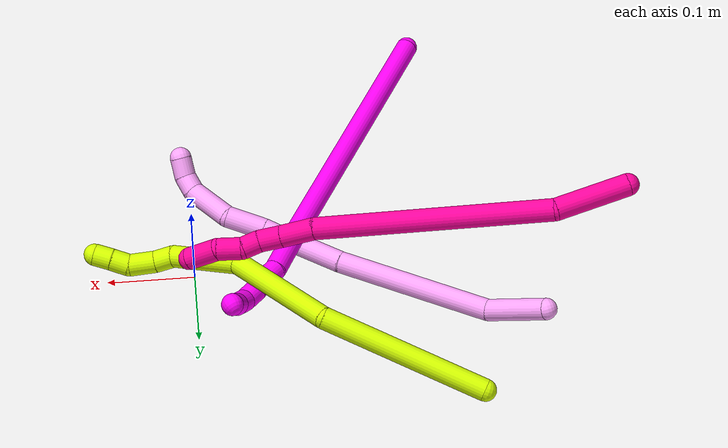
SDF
<sdf version="1.7">
 <world name="default">
  <model name="4">
   <static>0</static>
   <link name="4">
    <collision name="collision-cylinder-e_1_1_4">
     <pose>0.025404 0.000134 0.027908 -0.004799 0.738458 -0.001857</pose>
     <geometry><cylinder><radius>0.0125</radius><length>0.075479</length></cylinder></geometry>
     <surface>
      <friction><ode><mu>1.16</mu><mu2>1.16</mu2><slip1>0</slip1><slip2>0</slip2></ode></friction>
      <contact><ode><kp>1e+06</kp><kd>1</kd><max_vel>0</max_vel><min_depth>0.001</min_depth></ode></contact>
     </surface>
    </collision>
    <visual name="visual-cylinder-e_1_1_4">
     <pose>0.025404 0.000134 0.027908 -0.004799 0.738458 -0.001857</pose>
     <geometry><cylinder><radius>0.0125</radius><length>0.075479</length></cylinder></geometry>
     <material><ambient>1 0.65098 0.996078 1</ambient></material>
    </visual>
    <collision name="collision-cylinder-e_2_4_5">
     <pose>0.094391 -0.038704 0.124759 0.514506 0.50309 0.135013</pose>
     <geometry><cylinder><radius>0.0125</radius><length>0.18079</length></cylinder></geometry>
     <surface>
      <friction><ode><mu>1.16</mu><mu2>1.16</mu2><slip1>0</slip1><slip2>0</slip2></ode></friction>
      <contact><ode><kp>1e+06</kp><kd>1</kd><max_vel>0</max_vel><min_depth>0.001</min_depth></ode></contact>
     </surface>
    </collision>
    <visual name="visual-cylinder-e_2_4_5">
     <pose>0.094391 -0.038704 0.124759 0.514506 0.50309 0.135013</pose>
     <geometry><cylinder><radius>0.0125</radius><length>0.18079</length></cylinder></geometry>
     <material><ambient>1 0.65098 0.996078 1</ambient></material>
    </visual>
    <collision name="collision-cylinder-e_3_5_6">
     <pose>0.158758 -0.094988 0.219657 0.588186 0.58765 0.18278</pose>
     <geometry><cylinder><radius>0.0125</radius><length>0.074977</length></cylinder></geometry>
     <surface>
      <friction><ode><mu>1.16</mu><mu2>1.16</mu2><slip1>0</slip1><slip2>0</slip2></ode></friction>
      <contact><ode><kp>1e+06</kp><kd>1</kd><max_vel>0</max_vel><min_depth>0.001</min_depth></ode></contact>
     </surface>
    </collision>
    <visual name="visual-cylinder-e_3_5_6">
     <pose>0.158758 -0.094988 0.219657 0.588186 0.58765 0.18278</pose>
     <geometry><cylinder><radius>0.0125</radius><length>0.074977</length></cylinder></geometry>
     <material><ambient>1 0.65098 0.996078 1</ambient></material>
    </visual>
    <collision name="collision-cylinder-e_4_6_7">
     <pose>0.185879 -0.118483 0.253857 0.643652 0.551387 0.188089</pose>
     <geometry><cylinder><radius>0.0125</radius><length>0.024195</length></cylinder></geometry>
     <surface>
      <friction><ode><mu>1.16</mu><mu2>1.16</mu2><slip1>0</slip1><slip2>0</slip2></ode></friction>
      <contact><ode><kp>1e+06</kp><kd>1</kd><max_vel>0</max_vel><min_depth>0.001</min_depth></ode></contact>
     </surface>
    </collision>
    <visual name="visual-cylinder-e_4_6_7">
     <pose>0.185879 -0.118483 0.253857 0.643652 0.551387 0.188089</pose>
     <geometry><cylinder><radius>0.0125</radius><length>0.024195</length></cylinder></geometry>
     <material><ambient>1 0.65098 0.996078 1</ambient></material>
    </visual>
    <collision name="collision-cylinder-e_5_7_8">
     <pose>0.200476 -0.136089 0.28023 0.56217 0.367888 0.107331</pose>
     <geometry><cylinder><radius>0.0125</radius><length>0.045931</length></cylinder></geometry>
     <surface>
      <friction><ode><mu>1.16</mu><mu2>1.16</mu2><slip1>0</slip1><slip2>0</slip2></ode></friction>
      <contact><ode><kp>1e+06</kp><kd>1</kd><max_vel>0</max_vel><min_depth>0.001</min_depth></ode></contact>
     </surface>
    </collision>
    <visual name="visual-cylinder-e_5_7_8">
     <pose>0.200476 -0.136089 0.28023 0.56217 0.367888 0.107331</pose>
     <geometry><cylinder><radius>0.0125</radius><length>0.045931</length></cylinder></geometry>
     <material><ambient>1 0.65098 0.996078 1</ambient></material>
    </visual>
    <collision name="collision-cylinder-e_6_8_9">
     <pose>0.228102 -0.161801 0.311604 0.823411 0.782381 0.356379</pose>
     <geometry><cylinder><radius>0.0125</radius><length>0.054942</length></cylinder></geometry>
     <surface>
      <friction><ode><mu>1.16</mu><mu2>1.16</mu2><slip1>0</slip1><slip2>0</slip2></ode></friction>
      <contact><ode><kp>1e+06</kp><kd>1</kd><max_vel>0</max_vel><min_depth>0.001</min_depth></ode></contact>
     </surface>
    </collision>
    <visual name="visual-cylinder-e_6_8_9">
     <pose>0.228102 -0.161801 0.311604 0.823411 0.782381 0.356379</pose>
     <geometry><cylinder><radius>0.0125</radius><length>0.054942</length></cylinder></geometry>
     <material><ambient>1 0.65098 0.996078 1</ambient></material>
    </visual>
    <collision name="collision-cylinder-e_7_9_10">
     <pose>0.253143 -0.184452 0.326739 1.34831 0.584844 0.472136</pose>
     <geometry><cylinder><radius>0.0125</radius><length>0.020559</length></cylinder></geometry>
     <surface>
      <friction><ode><mu>1.16</mu><mu2>1.16</mu2><slip1>0</slip1><slip2>0</slip2></ode></friction>
      <contact><ode><kp>1e+06</kp><kd>1</kd><max_vel>0</max_vel><min_depth>0.001</min_depth></ode></contact>
     </surface>
    </collision>
    <visual name="visual-cylinder-e_7_9_10">
     <pose>0.253143 -0.184452 0.326739 1.34831 0.584844 0.472136</pose>
     <geometry><cylinder><radius>0.0125</radius><length>0.020559</length></cylinder></geometry>
     <material><ambient>1 0.65098 0.996078 1</ambient></material>
    </visual>
    <collision name="collision-cylinder-e_8_10_2">
     <pose>0.261586 -0.204016 0.327919 1.63417 0.241762 0.257422</pose>
     <geometry><cylinder><radius>0.0125</radius><length>0.023127</length></cylinder></geometry>
     <surface>
      <friction><ode><mu>1.16</mu><mu2>1.16</mu2><slip1>0</slip1><slip2>0</slip2></ode></friction>
      <contact><ode><kp>1e+06</kp><kd>1</kd><max_vel>0</max_vel><min_depth>0.001</min_depth></ode></contact>
     </surface>
    </collision>
    <visual name="visual-cylinder-e_8_10_2">
     <pose>0.261586 -0.204016 0.327919 1.63417 0.241762 0.257422</pose>
     <geometry><cylinder><radius>0.0125</radius><length>0.023127</length></cylinder></geometry>
     <material><ambient>1 0.65098 0.996078 1</ambient></material>
    </visual>
    <collision name="collision-sphere-2">
     <pose>0.264355 -0.215221 0.327208 0 -0 0</pose>
     <geometry><sphere><radius>0.0125</radius></sphere></geometry>
     <surface>
      <friction><ode><mu>1.16</mu><mu2>1.16</mu2><slip1>0</slip1><slip2>0</slip2></ode></friction>
      <contact><ode><kp>1e+06</kp><kd>1</kd><max_vel>0</max_vel><min_depth>0.001</min_depth></ode></contact>
     </surface>
    </collision>
    <visual name="visual-sphere-2">
     <pose>0.264355 -0.215221 0.327208 0 -0 0</pose>
     <geometry><sphere><radius>0.0125</radius></sphere></geometry>
     <material><ambient>1 0.65098 0.996078 1</ambient></material>
    </visual>
    <collision name="collision-sphere-10">
     <pose>0.258818 -0.192811 0.32863 0 -0 0</pose>
     <geometry><sphere><radius>0.0125</radius></sphere></geometry>
     <surface>
      <friction><ode><mu>1.16</mu><mu2>1.16</mu2><slip1>0</slip1><slip2>0</slip2></ode></friction>
      <contact><ode><kp>1e+06</kp><kd>1</kd><max_vel>0</max_vel><min_depth>0.001</min_depth></ode></contact>
     </surface>
    </collision>
    <visual name="visual-sphere-10">
     <pose>0.258818 -0.192811 0.32863 0 -0 0</pose>
     <geometry><sphere><radius>0.0125</radius></sphere></geometry>
     <material><ambient>1 0.65098 0.996078 1</ambient></material>
    </visual>
    <collision name="collision-sphere-9">
     <pose>0.247468 -0.176092 0.324848 0 -0 0</pose>
     <geometry><sphere><radius>0.0125</radius></sphere></geometry>
     <surface>
      <friction><ode><mu>1.16</mu><mu2>1.16</mu2><slip1>0</slip1><slip2>0</slip2></ode></friction>
      <contact><ode><kp>1e+06</kp><kd>1</kd><max_vel>0</max_vel><min_depth>0.001</min_depth></ode></contact>
     </surface>
    </collision>
    <visual name="visual-sphere-9">
     <pose>0.247468 -0.176092 0.324848 0 -0 0</pose>
     <geometry><sphere><radius>0.0125</radius></sphere></geometry>
     <material><ambient>1 0.65098 0.996078 1</ambient></material>
    </visual>
    <collision name="collision-sphere-4">
     <pose>0.050809 0.000268 0.055817 0 -0 0</pose>
     <geometry><sphere><radius>0.0125</radius></sphere></geometry>
     <surface>
      <friction><ode><mu>1.16</mu><mu2>1.16</mu2><slip1>0</slip1><slip2>0</slip2></ode></friction>
      <contact><ode><kp>1e+06</kp><kd>1</kd><max_vel>0</max_vel><min_depth>0.001</min_depth></ode></contact>
     </surface>
    </collision>
    <visual name="visual-sphere-4">
     <pose>0.050809 0.000268 0.055817 0 -0 0</pose>
     <geometry><sphere><radius>0.0125</radius></sphere></geometry>
     <material><ambient>1 0.65098 0.996078 1</ambient></material>
    </visual>
    <collision name="collision-sphere-1">
     <geometry><sphere><radius>0.0125</radius></sphere></geometry>
     <surface>
      <friction><ode><mu>1.16</mu><mu2>1.16</mu2><slip1>0</slip1><slip2>0</slip2></ode></friction>
      <contact><ode><kp>1e+06</kp><kd>1</kd><max_vel>0</max_vel><min_depth>0.001</min_depth></ode></contact>
     </surface>
    </collision>
    <visual name="visual-sphere-1">
     <geometry><sphere><radius>0.0125</radius></sphere></geometry>
     <material><ambient>1 0.65098 0.996078 1</ambient></material>
    </visual>
    <collision name="collision-sphere-8">
     <pose>0.208736 -0.147511 0.298361 0 -0 0</pose>
     <geometry><sphere><radius>0.0125</radius></sphere></geometry>
     <surface>
      <friction><ode><mu>1.16</mu><mu2>1.16</mu2><slip1>0</slip1><slip2>0</slip2></ode></friction>
      <contact><ode><kp>1e+06</kp><kd>1</kd><max_vel>0</max_vel><min_depth>0.001</min_depth></ode></contact>
     </surface>
    </collision>
    <visual name="visual-sphere-8">
     <pose>0.208736 -0.147511 0.298361 0 -0 0</pose>
     <geometry><sphere><radius>0.0125</radius></sphere></geometry>
     <material><ambient>1 0.65098 0.996078 1</ambient></material>
    </visual>
    <collision name="collision-sphere-5">
     <pose>0.137974 -0.077676 0.193701 0 -0 0</pose>
     <geometry><sphere><radius>0.0125</radius></sphere></geometry>
     <surface>
      <friction><ode><mu>1.16</mu><mu2>1.16</mu2><slip1>0</slip1><slip2>0</slip2></ode></friction>
      <contact><ode><kp>1e+06</kp><kd>1</kd><max_vel>0</max_vel><min_depth>0.001</min_depth></ode></contact>
     </surface>
    </collision>
    <visual name="visual-sphere-5">
     <pose>0.137974 -0.077676 0.193701 0 -0 0</pose>
     <geometry><sphere><radius>0.0125</radius></sphere></geometry>
     <material><ambient>1 0.65098 0.996078 1</ambient></material>
    </visual>
    <collision name="collision-sphere-6">
     <pose>0.179542 -0.112299 0.245614 0 -0 0</pose>
     <geometry><sphere><radius>0.0125</radius></sphere></geometry>
     <surface>
      <friction><ode><mu>1.16</mu><mu2>1.16</mu2><slip1>0</slip1><slip2>0</slip2></ode></friction>
      <contact><ode><kp>1e+06</kp><kd>1</kd><max_vel>0</max_vel><min_depth>0.001</min_depth></ode></contact>
     </surface>
    </collision>
    <visual name="visual-sphere-6">
     <pose>0.179542 -0.112299 0.245614 0 -0 0</pose>
     <geometry><sphere><radius>0.0125</radius></sphere></geometry>
     <material><ambient>1 0.65098 0.996078 1</ambient></material>
    </visual>
    <collision name="collision-sphere-7">
     <pose>0.192217 -0.124667 0.262099 0 -0 0</pose>
     <geometry><sphere><radius>0.0125</radius></sphere></geometry>
     <surface>
      <friction><ode><mu>1.16</mu><mu2>1.16</mu2><slip1>0</slip1><slip2>0</slip2></ode></friction>
      <contact><ode><kp>1e+06</kp><kd>1</kd><max_vel>0</max_vel><min_depth>0.001</min_depth></ode></contact>
     </surface>
    </collision>
    <visual name="visual-sphere-7">
     <pose>0.192217 -0.124667 0.262099 0 -0 0</pose>
     <geometry><sphere><radius>0.0125</radius></sphere></geometry>
     <material><ambient>1 0.65098 0.996078 1</ambient></material>
    </visual>
    <inertial>
     <pose>0.136755 -0.081253 0.183131 0 -0 0</pose>
     <mass>0.5</mass>
     <inertia>
      <ixx>0.00061</ixx>
      <ixy>0</ixy>
      <ixz>0</ixz>
      <iyy>0.000597</iyy>
      <iyz>0</iyz>
      <izz>-2.9e-05</izz>
     </inertia>
    </inertial>
   </link>
   <pose>-0.388506 0.131588 0.04259 -1.72737 0.451621 -1.43588</pose>
  </model>
  <model name="10">
   <static>0</static>
   <link name="10">
    <collision name="collision-cylinder-e_1_1_4">
     <pose>0.123444 0.057773 -0.099674 -2.6163 0.819901 -2.03351</pose>
     <geometry><cylinder><radius>0.0125</radius><length>0.337705</length></cylinder></geometry>
     <surface>
      <friction><ode><mu>1.16</mu><mu2>1.16</mu2><slip1>0</slip1><slip2>0</slip2></ode></friction>
      <contact><ode><kp>1e+06</kp><kd>1</kd><max_vel>0</max_vel><min_depth>0.001</min_depth></ode></contact>
     </surface>
    </collision>
    <visual name="visual-cylinder-e_1_1_4">
     <pose>0.123444 0.057773 -0.099674 -2.6163 0.819901 -2.03351</pose>
     <geometry><cylinder><radius>0.0125</radius><length>0.337705</length></cylinder></geometry>
     <material><ambient>1 0 0.964706 1</ambient></material>
    </visual>
    <collision name="collision-cylinder-e_2_4_5">
     <pose>0.269043 0.12529 -0.217954 -2.65916 0.812069 -2.10213</pose>
     <geometry><cylinder><radius>0.0125</radius><length>0.061055</length></cylinder></geometry>
     <surface>
      <friction><ode><mu>1.16</mu><mu2>1.16</mu2><slip1>0</slip1><slip2>0</slip2></ode></friction>
      <contact><ode><kp>1e+06</kp><kd>1</kd><max_vel>0</max_vel><min_depth>0.001</min_depth></ode></contact>
     </surface>
    </collision>
    <visual name="visual-cylinder-e_2_4_5">
     <pose>0.269043 0.12529 -0.217954 -2.65916 0.812069 -2.10213</pose>
     <geometry><cylinder><radius>0.0125</radius><length>0.061055</length></cylinder></geometry>
     <material><ambient>1 0 0.964706 1</ambient></material>
    </visual>
    <collision name="collision-cylinder-e_3_5_6">
     <pose>0.299866 0.138667 -0.240573 -2.40582 1.01262 -1.92676</pose>
     <geometry><cylinder><radius>0.0125</radius><length>0.02044</length></cylinder></geometry>
     <surface>
      <friction><ode><mu>1.16</mu><mu2>1.16</mu2><slip1>0</slip1><slip2>0</slip2></ode></friction>
      <contact><ode><kp>1e+06</kp><kd>1</kd><max_vel>0</max_vel><min_depth>0.001</min_depth></ode></contact>
     </surface>
    </collision>
    <visual name="visual-cylinder-e_3_5_6">
     <pose>0.299866 0.138667 -0.240573 -2.40582 1.01262 -1.92676</pose>
     <geometry><cylinder><radius>0.0125</radius><length>0.02044</length></cylinder></geometry>
     <material><ambient>1 0 0.964706 1</ambient></material>
    </visual>
    <collision name="collision-cylinder-e_4_6_7">
     <pose>0.316358 0.146132 -0.249611 -2.49018 0.891227 -1.91069</pose>
     <geometry><cylinder><radius>0.0125</radius><length>0.020114</length></cylinder></geometry>
     <surface>
      <friction><ode><mu>1.16</mu><mu2>1.16</mu2><slip1>0</slip1><slip2>0</slip2></ode></friction>
      <contact><ode><kp>1e+06</kp><kd>1</kd><max_vel>0</max_vel><min_depth>0.001</min_depth></ode></contact>
     </surface>
    </collision>
    <visual name="visual-cylinder-e_4_6_7">
     <pose>0.316358 0.146132 -0.249611 -2.49018 0.891227 -1.91069</pose>
     <geometry><cylinder><radius>0.0125</radius><length>0.020114</length></cylinder></geometry>
     <material><ambient>1 0 0.964706 1</ambient></material>
    </visual>
    <collision name="collision-cylinder-e_5_7_8">
     <pose>0.332604 0.154066 -0.258583 -2.33667 0.976572 -1.79039</pose>
     <geometry><cylinder><radius>0.0125</radius><length>0.020331</length></cylinder></geometry>
     <surface>
      <friction><ode><mu>1.16</mu><mu2>1.16</mu2><slip1>0</slip1><slip2>0</slip2></ode></friction>
      <contact><ode><kp>1e+06</kp><kd>1</kd><max_vel>0</max_vel><min_depth>0.001</min_depth></ode></contact>
     </surface>
    </collision>
    <visual name="visual-cylinder-e_5_7_8">
     <pose>0.332604 0.154066 -0.258583 -2.33667 0.976572 -1.79039</pose>
     <geometry><cylinder><radius>0.0125</radius><length>0.020331</length></cylinder></geometry>
     <material><ambient>1 0 0.964706 1</ambient></material>
    </visual>
    <collision name="collision-cylinder-e_6_8_9">
     <pose>0.34657 0.165881 -0.265885 -1.98133 0.582753 -0.858366</pose>
     <geometry><cylinder><radius>0.0125</radius><length>0.020147</length></cylinder></geometry>
     <surface>
      <friction><ode><mu>1.16</mu><mu2>1.16</mu2><slip1>0</slip1><slip2>0</slip2></ode></friction>
      <contact><ode><kp>1e+06</kp><kd>1</kd><max_vel>0</max_vel><min_depth>0.001</min_depth></ode></contact>
     </surface>
    </collision>
    <visual name="visual-cylinder-e_6_8_9">
     <pose>0.34657 0.165881 -0.265885 -1.98133 0.582753 -0.858366</pose>
     <geometry><cylinder><radius>0.0125</radius><length>0.020147</length></cylinder></geometry>
     <material><ambient>1 0 0.964706 1</ambient></material>
    </visual>
    <collision name="collision-cylinder-e_7_9_2">
     <pose>0.355424 0.18274 -0.271974 -1.86106 0.333725 -0.444707</pose>
     <geometry><cylinder><radius>0.0125</radius><length>0.020207</length></cylinder></geometry>
     <surface>
      <friction><ode><mu>1.16</mu><mu2>1.16</mu2><slip1>0</slip1><slip2>0</slip2></ode></friction>
      <contact><ode><kp>1e+06</kp><kd>1</kd><max_vel>0</max_vel><min_depth>0.001</min_depth></ode></contact>
     </surface>
    </collision>
    <visual name="visual-cylinder-e_7_9_2">
     <pose>0.355424 0.18274 -0.271974 -1.86106 0.333725 -0.444707</pose>
     <geometry><cylinder><radius>0.0125</radius><length>0.020207</length></cylinder></geometry>
     <material><ambient>1 0 0.964706 1</ambient></material>
    </visual>
    <collision name="collision-sphere-2">
     <pose>0.358733 0.191886 -0.274706 0 -0 0</pose>
     <geometry><sphere><radius>0.0125</radius></sphere></geometry>
     <surface>
      <friction><ode><mu>1.16</mu><mu2>1.16</mu2><slip1>0</slip1><slip2>0</slip2></ode></friction>
      <contact><ode><kp>1e+06</kp><kd>1</kd><max_vel>0</max_vel><min_depth>0.001</min_depth></ode></contact>
     </surface>
    </collision>
    <visual name="visual-sphere-2">
     <pose>0.358733 0.191886 -0.274706 0 -0 0</pose>
     <geometry><sphere><radius>0.0125</radius></sphere></geometry>
     <material><ambient>1 0 0.964706 1</ambient></material>
    </visual>
    <collision name="collision-sphere-9">
     <pose>0.352114 0.173593 -0.269241 0 -0 0</pose>
     <geometry><sphere><radius>0.0125</radius></sphere></geometry>
     <surface>
      <friction><ode><mu>1.16</mu><mu2>1.16</mu2><slip1>0</slip1><slip2>0</slip2></ode></friction>
      <contact><ode><kp>1e+06</kp><kd>1</kd><max_vel>0</max_vel><min_depth>0.001</min_depth></ode></contact>
     </surface>
    </collision>
    <visual name="visual-sphere-9">
     <pose>0.352114 0.173593 -0.269241 0 -0 0</pose>
     <geometry><sphere><radius>0.0125</radius></sphere></geometry>
     <material><ambient>1 0 0.964706 1</ambient></material>
    </visual>
    <collision name="collision-sphere-4">
     <pose>0.246889 0.115546 -0.199348 0 -0 0</pose>
     <geometry><sphere><radius>0.0125</radius></sphere></geometry>
     <surface>
      <friction><ode><mu>1.16</mu><mu2>1.16</mu2><slip1>0</slip1><slip2>0</slip2></ode></friction>
      <contact><ode><kp>1e+06</kp><kd>1</kd><max_vel>0</max_vel><min_depth>0.001</min_depth></ode></contact>
     </surface>
    </collision>
    <visual name="visual-sphere-4">
     <pose>0.246889 0.115546 -0.199348 0 -0 0</pose>
     <geometry><sphere><radius>0.0125</radius></sphere></geometry>
     <material><ambient>1 0 0.964706 1</ambient></material>
    </visual>
    <collision name="collision-sphere-1">
     <geometry><sphere><radius>0.0125</radius></sphere></geometry>
     <surface>
      <friction><ode><mu>1.16</mu><mu2>1.16</mu2><slip1>0</slip1><slip2>0</slip2></ode></friction>
      <contact><ode><kp>1e+06</kp><kd>1</kd><max_vel>0</max_vel><min_depth>0.001</min_depth></ode></contact>
     </surface>
    </collision>
    <visual name="visual-sphere-1">
     <geometry><sphere><radius>0.0125</radius></sphere></geometry>
     <material><ambient>1 0 0.964706 1</ambient></material>
    </visual>
    <collision name="collision-sphere-8">
     <pose>0.341027 0.158168 -0.262528 0 -0 0</pose>
     <geometry><sphere><radius>0.0125</radius></sphere></geometry>
     <surface>
      <friction><ode><mu>1.16</mu><mu2>1.16</mu2><slip1>0</slip1><slip2>0</slip2></ode></friction>
      <contact><ode><kp>1e+06</kp><kd>1</kd><max_vel>0</max_vel><min_depth>0.001</min_depth></ode></contact>
     </surface>
    </collision>
    <visual name="visual-sphere-8">
     <pose>0.341027 0.158168 -0.262528 0 -0 0</pose>
     <geometry><sphere><radius>0.0125</radius></sphere></geometry>
     <material><ambient>1 0 0.964706 1</ambient></material>
    </visual>
    <collision name="collision-sphere-5">
     <pose>0.291197 0.135034 -0.23656 0 -0 0</pose>
     <geometry><sphere><radius>0.0125</radius></sphere></geometry>
     <surface>
      <friction><ode><mu>1.16</mu><mu2>1.16</mu2><slip1>0</slip1><slip2>0</slip2></ode></friction>
      <contact><ode><kp>1e+06</kp><kd>1</kd><max_vel>0</max_vel><min_depth>0.001</min_depth></ode></contact>
     </surface>
    </collision>
    <visual name="visual-sphere-5">
     <pose>0.291197 0.135034 -0.23656 0 -0 0</pose>
     <geometry><sphere><radius>0.0125</radius></sphere></geometry>
     <material><ambient>1 0 0.964706 1</ambient></material>
    </visual>
    <collision name="collision-sphere-6">
     <pose>0.308535 0.1423 -0.244585 0 -0 0</pose>
     <geometry><sphere><radius>0.0125</radius></sphere></geometry>
     <surface>
      <friction><ode><mu>1.16</mu><mu2>1.16</mu2><slip1>0</slip1><slip2>0</slip2></ode></friction>
      <contact><ode><kp>1e+06</kp><kd>1</kd><max_vel>0</max_vel><min_depth>0.001</min_depth></ode></contact>
     </surface>
    </collision>
    <visual name="visual-sphere-6">
     <pose>0.308535 0.1423 -0.244585 0 -0 0</pose>
     <geometry><sphere><radius>0.0125</radius></sphere></geometry>
     <material><ambient>1 0 0.964706 1</ambient></material>
    </visual>
    <collision name="collision-sphere-7">
     <pose>0.32418 0.149964 -0.254638 0 -0 0</pose>
     <geometry><sphere><radius>0.0125</radius></sphere></geometry>
     <surface>
      <friction><ode><mu>1.16</mu><mu2>1.16</mu2><slip1>0</slip1><slip2>0</slip2></ode></friction>
      <contact><ode><kp>1e+06</kp><kd>1</kd><max_vel>0</max_vel><min_depth>0.001</min_depth></ode></contact>
     </surface>
    </collision>
    <visual name="visual-sphere-7">
     <pose>0.32418 0.149964 -0.254638 0 -0 0</pose>
     <geometry><sphere><radius>0.0125</radius></sphere></geometry>
     <material><ambient>1 0 0.964706 1</ambient></material>
    </visual>
    <inertial>
     <pose>0.183067 0.086201 -0.146031 0 -0 0</pose>
     <mass>0.5</mass>
     <inertia>
      <ixx>-0.002944</ixx>
      <ixy>0</ixy>
      <ixz>0</ixz>
      <iyy>0.000352</iyy>
      <iyz>0</iyz>
      <izz>-0.003512</izz>
     </inertia>
    </inertial>
   </link>
   <pose>-0.277089 -0.288594 0.080917 1.26612 0.242668 0.351292</pose>
  </model>
  <model name="15">
   <static>0</static>
   <link name="15">
    <collision name="collision-cylinder-e_1_1_4">
     <pose>0.028128 -0.027235 0.088302 0.299174 0.295482 0.044852</pose>
     <geometry><cylinder><radius>0.0125</radius><length>0.193185</length></cylinder></geometry>
     <surface>
      <friction><ode><mu>1.16</mu><mu2>1.16</mu2><slip1>0</slip1><slip2>0</slip2></ode></friction>
      <contact><ode><kp>1e+06</kp><kd>1</kd><max_vel>0</max_vel><min_depth>0.001</min_depth></ode></contact>
     </surface>
    </collision>
    <visual name="visual-cylinder-e_1_1_4">
     <pose>0.028128 -0.027235 0.088302 0.299174 0.295482 0.044852</pose>
     <geometry><cylinder><radius>0.0125</radius><length>0.193185</length></cylinder></geometry>
     <material><ambient>0.835294 1 0 1</ambient></material>
    </visual>
    <collision name="collision-cylinder-e_2_4_5">
     <pose>0.092074 -0.090619 0.217637 0.722188 0.579879 0.224396</pose>
     <geometry><cylinder><radius>0.0125</radius><length>0.130744</length></cylinder></geometry>
     <surface>
      <friction><ode><mu>1.16</mu><mu2>1.16</mu2><slip1>0</slip1><slip2>0</slip2></ode></friction>
      <contact><ode><kp>1e+06</kp><kd>1</kd><max_vel>0</max_vel><min_depth>0.001</min_depth></ode></contact>
     </surface>
    </collision>
    <visual name="visual-cylinder-e_2_4_5">
     <pose>0.092074 -0.090619 0.217637 0.722188 0.579879 0.224396</pose>
     <geometry><cylinder><radius>0.0125</radius><length>0.130744</length></cylinder></geometry>
     <material><ambient>0.835294 1 0 1</ambient></material>
    </visual>
    <collision name="collision-cylinder-e_3_5_6">
     <pose>0.157508 -0.13487 0.286469 0.283626 0.796657 0.120019</pose>
     <geometry><cylinder><radius>0.0125</radius><length>0.082835</length></cylinder></geometry>
     <surface>
      <friction><ode><mu>1.16</mu><mu2>1.16</mu2><slip1>0</slip1><slip2>0</slip2></ode></friction>
      <contact><ode><kp>1e+06</kp><kd>1</kd><max_vel>0</max_vel><min_depth>0.001</min_depth></ode></contact>
     </surface>
    </collision>
    <visual name="visual-cylinder-e_3_5_6">
     <pose>0.157508 -0.13487 0.286469 0.283626 0.796657 0.120019</pose>
     <geometry><cylinder><radius>0.0125</radius><length>0.082835</length></cylinder></geometry>
     <material><ambient>0.835294 1 0 1</ambient></material>
    </visual>
    <collision name="collision-cylinder-e_4_6_7">
     <pose>0.194651 -0.140255 0.321758 -0.348022 0.757053 -0.139597</pose>
     <geometry><cylinder><radius>0.0125</radius><length>0.021926</length></cylinder></geometry>
     <surface>
      <friction><ode><mu>1.16</mu><mu2>1.16</mu2><slip1>0</slip1><slip2>0</slip2></ode></friction>
      <contact><ode><kp>1e+06</kp><kd>1</kd><max_vel>0</max_vel><min_depth>0.001</min_depth></ode></contact>
     </surface>
    </collision>
    <visual name="visual-cylinder-e_4_6_7">
     <pose>0.194651 -0.140255 0.321758 -0.348022 0.757053 -0.139597</pose>
     <geometry><cylinder><radius>0.0125</radius><length>0.021926</length></cylinder></geometry>
     <material><ambient>0.835294 1 0 1</ambient></material>
    </visual>
    <collision name="collision-cylinder-e_5_7_8">
     <pose>0.209918 -0.1343 0.341819 -0.252102 0.537567 -0.069783</pose>
     <geometry><cylinder><radius>0.0125</radius><length>0.030223</length></cylinder></geometry>
     <surface>
      <friction><ode><mu>1.16</mu><mu2>1.16</mu2><slip1>0</slip1><slip2>0</slip2></ode></friction>
      <contact><ode><kp>1e+06</kp><kd>1</kd><max_vel>0</max_vel><min_depth>0.001</min_depth></ode></contact>
     </surface>
    </collision>
    <visual name="visual-cylinder-e_5_7_8">
     <pose>0.209918 -0.1343 0.341819 -0.252102 0.537567 -0.069783</pose>
     <geometry><cylinder><radius>0.0125</radius><length>0.030223</length></cylinder></geometry>
     <material><ambient>0.835294 1 0 1</ambient></material>
    </visual>
    <collision name="collision-cylinder-e_6_8_9">
     <pose>0.220817 -0.132875 0.364172 0.183243 0.307617 0.028487</pose>
     <geometry><cylinder><radius>0.0125</radius><length>0.020879</length></cylinder></geometry>
     <surface>
      <friction><ode><mu>1.16</mu><mu2>1.16</mu2><slip1>0</slip1><slip2>0</slip2></ode></friction>
      <contact><ode><kp>1e+06</kp><kd>1</kd><max_vel>0</max_vel><min_depth>0.001</min_depth></ode></contact>
     </surface>
    </collision>
    <visual name="visual-cylinder-e_6_8_9">
     <pose>0.220817 -0.132875 0.364172 0.183243 0.307617 0.028487</pose>
     <geometry><cylinder><radius>0.0125</radius><length>0.020879</length></cylinder></geometry>
     <material><ambient>0.835294 1 0 1</ambient></material>
    </visual>
    <collision name="collision-cylinder-e_7_9_2">
     <pose>0.227762 -0.136379 0.383169 0.181474 0.383884 0.03536</pose>
     <geometry><cylinder><radius>0.0125</radius><length>0.020208</length></cylinder></geometry>
     <surface>
      <friction><ode><mu>1.16</mu><mu2>1.16</mu2><slip1>0</slip1><slip2>0</slip2></ode></friction>
      <contact><ode><kp>1e+06</kp><kd>1</kd><max_vel>0</max_vel><min_depth>0.001</min_depth></ode></contact>
     </surface>
    </collision>
    <visual name="visual-cylinder-e_7_9_2">
     <pose>0.227762 -0.136379 0.383169 0.181474 0.383884 0.03536</pose>
     <geometry><cylinder><radius>0.0125</radius><length>0.020208</length></cylinder></geometry>
     <material><ambient>0.835294 1 0 1</ambient></material>
    </visual>
    <collision name="collision-sphere-2">
     <pose>0.231547 -0.13807 0.392384 0 -0 0</pose>
     <geometry><sphere><radius>0.0125</radius></sphere></geometry>
     <surface>
      <friction><ode><mu>1.16</mu><mu2>1.16</mu2><slip1>0</slip1><slip2>0</slip2></ode></friction>
      <contact><ode><kp>1e+06</kp><kd>1</kd><max_vel>0</max_vel><min_depth>0.001</min_depth></ode></contact>
     </surface>
    </collision>
    <visual name="visual-sphere-2">
     <pose>0.231547 -0.13807 0.392384 0 -0 0</pose>
     <geometry><sphere><radius>0.0125</radius></sphere></geometry>
     <material><ambient>0.835294 1 0 1</ambient></material>
    </visual>
    <collision name="collision-sphere-9">
     <pose>0.223978 -0.134688 0.373955 0 -0 0</pose>
     <geometry><sphere><radius>0.0125</radius></sphere></geometry>
     <surface>
      <friction><ode><mu>1.16</mu><mu2>1.16</mu2><slip1>0</slip1><slip2>0</slip2></ode></friction>
      <contact><ode><kp>1e+06</kp><kd>1</kd><max_vel>0</max_vel><min_depth>0.001</min_depth></ode></contact>
     </surface>
    </collision>
    <visual name="visual-sphere-9">
     <pose>0.223978 -0.134688 0.373955 0 -0 0</pose>
     <geometry><sphere><radius>0.0125</radius></sphere></geometry>
     <material><ambient>0.835294 1 0 1</ambient></material>
    </visual>
    <collision name="collision-sphere-4">
     <pose>0.056256 -0.05447 0.176603 0 -0 0</pose>
     <geometry><sphere><radius>0.0125</radius></sphere></geometry>
     <surface>
      <friction><ode><mu>1.16</mu><mu2>1.16</mu2><slip1>0</slip1><slip2>0</slip2></ode></friction>
      <contact><ode><kp>1e+06</kp><kd>1</kd><max_vel>0</max_vel><min_depth>0.001</min_depth></ode></contact>
     </surface>
    </collision>
    <visual name="visual-sphere-4">
     <pose>0.056256 -0.05447 0.176603 0 -0 0</pose>
     <geometry><sphere><radius>0.0125</radius></sphere></geometry>
     <material><ambient>0.835294 1 0 1</ambient></material>
    </visual>
    <collision name="collision-sphere-1">
     <geometry><sphere><radius>0.0125</radius></sphere></geometry>
     <surface>
      <friction><ode><mu>1.16</mu><mu2>1.16</mu2><slip1>0</slip1><slip2>0</slip2></ode></friction>
      <contact><ode><kp>1e+06</kp><kd>1</kd><max_vel>0</max_vel><min_depth>0.001</min_depth></ode></contact>
     </surface>
    </collision>
    <visual name="visual-sphere-1">
     <geometry><sphere><radius>0.0125</radius></sphere></geometry>
     <material><ambient>0.835294 1 0 1</ambient></material>
    </visual>
    <collision name="collision-sphere-8">
     <pose>0.217656 -0.131062 0.354389 0 -0 0</pose>
     <geometry><sphere><radius>0.0125</radius></sphere></geometry>
     <surface>
      <friction><ode><mu>1.16</mu><mu2>1.16</mu2><slip1>0</slip1><slip2>0</slip2></ode></friction>
      <contact><ode><kp>1e+06</kp><kd>1</kd><max_vel>0</max_vel><min_depth>0.001</min_depth></ode></contact>
     </surface>
    </collision>
    <visual name="visual-sphere-8">
     <pose>0.217656 -0.131062 0.354389 0 -0 0</pose>
     <geometry><sphere><radius>0.0125</radius></sphere></geometry>
     <material><ambient>0.835294 1 0 1</ambient></material>
    </visual>
    <collision name="collision-sphere-5">
     <pose>0.127893 -0.126767 0.258671 0 -0 0</pose>
     <geometry><sphere><radius>0.0125</radius></sphere></geometry>
     <surface>
      <friction><ode><mu>1.16</mu><mu2>1.16</mu2><slip1>0</slip1><slip2>0</slip2></ode></friction>
      <contact><ode><kp>1e+06</kp><kd>1</kd><max_vel>0</max_vel><min_depth>0.001</min_depth></ode></contact>
     </surface>
    </collision>
    <visual name="visual-sphere-5">
     <pose>0.127893 -0.126767 0.258671 0 -0 0</pose>
     <geometry><sphere><radius>0.0125</radius></sphere></geometry>
     <material><ambient>0.835294 1 0 1</ambient></material>
    </visual>
    <collision name="collision-sphere-6">
     <pose>0.187122 -0.142973 0.314267 0 -0 0</pose>
     <geometry><sphere><radius>0.0125</radius></sphere></geometry>
     <surface>
      <friction><ode><mu>1.16</mu><mu2>1.16</mu2><slip1>0</slip1><slip2>0</slip2></ode></friction>
      <contact><ode><kp>1e+06</kp><kd>1</kd><max_vel>0</max_vel><min_depth>0.001</min_depth></ode></contact>
     </surface>
    </collision>
    <visual name="visual-sphere-6">
     <pose>0.187122 -0.142973 0.314267 0 -0 0</pose>
     <geometry><sphere><radius>0.0125</radius></sphere></geometry>
     <material><ambient>0.835294 1 0 1</ambient></material>
    </visual>
    <collision name="collision-sphere-7">
     <pose>0.20218 -0.137538 0.329249 0 -0 0</pose>
     <geometry><sphere><radius>0.0125</radius></sphere></geometry>
     <surface>
      <friction><ode><mu>1.16</mu><mu2>1.16</mu2><slip1>0</slip1><slip2>0</slip2></ode></friction>
      <contact><ode><kp>1e+06</kp><kd>1</kd><max_vel>0</max_vel><min_depth>0.001</min_depth></ode></contact>
     </surface>
    </collision>
    <visual name="visual-sphere-7">
     <pose>0.20218 -0.137538 0.329249 0 -0 0</pose>
     <geometry><sphere><radius>0.0125</radius></sphere></geometry>
     <material><ambient>0.835294 1 0 1</ambient></material>
    </visual>
    <inertial>
     <pose>0.100689 -0.081891 0.203951 0 -0 0</pose>
     <mass>0.5</mass>
     <inertia><ixx>0.000863</ixx><ixy>0</ixy><ixz>0</ixz><iyy>0.000851</iyy><iyz>0</iyz><izz>-5e-06</izz></inertia>
    </inertial>
   </link>
   <pose>-0.303808 0.252048 0.047318 -0.565694 1.0106 -0.707968</pose>
  </model>
  <model name="18">
   <static>0</static>
   <link name="18">
    <collision name="collision-cylinder-e_1_1_4">
     <pose>0.039286 0.009468 -0.011453 -2.4508 1.20917 -2.18129</pose>
     <geometry><cylinder><radius>0.0125</radius><length>0.084005</length></cylinder></geometry>
     <surface>
      <friction><ode><mu>1.16</mu><mu2>1.16</mu2><slip1>0</slip1><slip2>0</slip2></ode></friction>
      <contact><ode><kp>1e+06</kp><kd>1</kd><max_vel>0</max_vel><min_depth>0.001</min_depth></ode></contact>
     </surface>
    </collision>
    <visual name="visual-cylinder-e_1_1_4">
     <pose>0.039286 0.009468 -0.011453 -2.4508 1.20917 -2.18129</pose>
     <geometry><cylinder><radius>0.0125</radius><length>0.084005</length></cylinder></geometry>
     <material><ambient>1 0.007843 0.615686 1</ambient></material>
    </visual>
    <collision name="collision-cylinder-e_2_4_5">
     <pose>0.199476 -0.002712 -0.075153 2.74877 1.13327 2.53539</pose>
     <geometry><cylinder><radius>0.0125</radius><length>0.266955</length></cylinder></geometry>
     <surface>
      <friction><ode><mu>1.16</mu><mu2>1.16</mu2><slip1>0</slip1><slip2>0</slip2></ode></friction>
      <contact><ode><kp>1e+06</kp><kd>1</kd><max_vel>0</max_vel><min_depth>0.001</min_depth></ode></contact>
     </surface>
    </collision>
    <visual name="visual-cylinder-e_2_4_5">
     <pose>0.199476 -0.002712 -0.075153 2.74877 1.13327 2.53539</pose>
     <geometry><cylinder><radius>0.0125</radius><length>0.266955</length></cylinder></geometry>
     <material><ambient>1 0.007843 0.615686 1</ambient></material>
    </visual>
    <collision name="collision-cylinder-e_3_5_6">
     <pose>0.336769 -0.025439 -0.13677 3.02698 1.04855 2.94382</pose>
     <geometry><cylinder><radius>0.0125</radius><length>0.037818</length></cylinder></geometry>
     <surface>
      <friction><ode><mu>1.16</mu><mu2>1.16</mu2><slip1>0</slip1><slip2>0</slip2></ode></friction>
      <contact><ode><kp>1e+06</kp><kd>1</kd><max_vel>0</max_vel><min_depth>0.001</min_depth></ode></contact>
     </surface>
    </collision>
    <visual name="visual-cylinder-e_3_5_6">
     <pose>0.336769 -0.025439 -0.13677 3.02698 1.04855 2.94382</pose>
     <geometry><cylinder><radius>0.0125</radius><length>0.037818</length></cylinder></geometry>
     <material><ambient>1 0.007843 0.615686 1</ambient></material>
    </visual>
    <collision name="collision-cylinder-e_4_6_7">
     <pose>0.364845 -0.02704 -0.151901 3.05118 1.11124 2.99613</pose>
     <geometry><cylinder><radius>0.0125</radius><length>0.02608</length></cylinder></geometry>
     <surface>
      <friction><ode><mu>1.16</mu><mu2>1.16</mu2><slip1>0</slip1><slip2>0</slip2></ode></friction>
      <contact><ode><kp>1e+06</kp><kd>1</kd><max_vel>0</max_vel><min_depth>0.001</min_depth></ode></contact>
     </surface>
    </collision>
    <visual name="visual-cylinder-e_4_6_7">
     <pose>0.364845 -0.02704 -0.151901 3.05118 1.11124 2.99613</pose>
     <geometry><cylinder><radius>0.0125</radius><length>0.02608</length></cylinder></geometry>
     <material><ambient>1 0.007843 0.615686 1</ambient></material>
    </visual>
    <collision name="collision-cylinder-e_5_7_8">
     <pose>0.38562 -0.024853 -0.161002 -2.46027 1.12872 -2.12067</pose>
     <geometry><cylinder><radius>0.0125</radius><length>0.020109</length></cylinder></geometry>
     <surface>
      <friction><ode><mu>1.16</mu><mu2>1.16</mu2><slip1>0</slip1><slip2>0</slip2></ode></friction>
      <contact><ode><kp>1e+06</kp><kd>1</kd><max_vel>0</max_vel><min_depth>0.001</min_depth></ode></contact>
     </surface>
    </collision>
    <visual name="visual-cylinder-e_5_7_8">
     <pose>0.38562 -0.024853 -0.161002 -2.46027 1.12872 -2.12067</pose>
     <geometry><cylinder><radius>0.0125</radius><length>0.020109</length></cylinder></geometry>
     <material><ambient>1 0.007843 0.615686 1</ambient></material>
    </visual>
    <collision name="collision-cylinder-e_6_8_9">
     <pose>0.407699 -0.024315 -0.16873 2.68199 1.21045 2.48946</pose>
     <geometry><cylinder><radius>0.0125</radius><length>0.027766</length></cylinder></geometry>
     <surface>
      <friction><ode><mu>1.16</mu><mu2>1.16</mu2><slip1>0</slip1><slip2>0</slip2></ode></friction>
      <contact><ode><kp>1e+06</kp><kd>1</kd><max_vel>0</max_vel><min_depth>0.001</min_depth></ode></contact>
     </surface>
    </collision>
    <visual name="visual-cylinder-e_6_8_9">
     <pose>0.407699 -0.024315 -0.16873 2.68199 1.21045 2.48946</pose>
     <geometry><cylinder><radius>0.0125</radius><length>0.027766</length></cylinder></geometry>
     <material><ambient>1 0.007843 0.615686 1</ambient></material>
    </visual>
    <collision name="collision-cylinder-e_7_9_2">
     <pose>0.434259 -0.028772 -0.185683 2.96173 0.81565 2.73008</pose>
     <geometry><cylinder><radius>0.0125</radius><length>0.037267</length></cylinder></geometry>
     <surface>
      <friction><ode><mu>1.16</mu><mu2>1.16</mu2><slip1>0</slip1><slip2>0</slip2></ode></friction>
      <contact><ode><kp>1e+06</kp><kd>1</kd><max_vel>0</max_vel><min_depth>0.001</min_depth></ode></contact>
     </surface>
    </collision>
    <visual name="visual-cylinder-e_7_9_2">
     <pose>0.434259 -0.028772 -0.185683 2.96173 0.81565 2.73008</pose>
     <geometry><cylinder><radius>0.0125</radius><length>0.037267</length></cylinder></geometry>
     <material><ambient>1 0.007843 0.615686 1</ambient></material>
    </visual>
    <collision name="collision-sphere-2">
     <pose>0.447827 -0.031056 -0.198248 0 -0 0</pose>
     <geometry><sphere><radius>0.0125</radius></sphere></geometry>
     <surface>
      <friction><ode><mu>1.16</mu><mu2>1.16</mu2><slip1>0</slip1><slip2>0</slip2></ode></friction>
      <contact><ode><kp>1e+06</kp><kd>1</kd><max_vel>0</max_vel><min_depth>0.001</min_depth></ode></contact>
     </surface>
    </collision>
    <visual name="visual-sphere-2">
     <pose>0.447827 -0.031056 -0.198248 0 -0 0</pose>
     <geometry><sphere><radius>0.0125</radius></sphere></geometry>
     <material><ambient>1 0.007843 0.615686 1</ambient></material>
    </visual>
    <collision name="collision-sphere-9">
     <pose>0.42069 -0.026487 -0.173117 0 -0 0</pose>
     <geometry><sphere><radius>0.0125</radius></sphere></geometry>
     <surface>
      <friction><ode><mu>1.16</mu><mu2>1.16</mu2><slip1>0</slip1><slip2>0</slip2></ode></friction>
      <contact><ode><kp>1e+06</kp><kd>1</kd><max_vel>0</max_vel><min_depth>0.001</min_depth></ode></contact>
     </surface>
    </collision>
    <visual name="visual-sphere-9">
     <pose>0.42069 -0.026487 -0.173117 0 -0 0</pose>
     <geometry><sphere><radius>0.0125</radius></sphere></geometry>
     <material><ambient>1 0.007843 0.615686 1</ambient></material>
    </visual>
    <collision name="collision-sphere-4">
     <pose>0.078572 0.018936 -0.022907 0 -0 0</pose>
     <geometry><sphere><radius>0.0125</radius></sphere></geometry>
     <surface>
      <friction><ode><mu>1.16</mu><mu2>1.16</mu2><slip1>0</slip1><slip2>0</slip2></ode></friction>
      <contact><ode><kp>1e+06</kp><kd>1</kd><max_vel>0</max_vel><min_depth>0.001</min_depth></ode></contact>
     </surface>
    </collision>
    <visual name="visual-sphere-4">
     <pose>0.078572 0.018936 -0.022907 0 -0 0</pose>
     <geometry><sphere><radius>0.0125</radius></sphere></geometry>
     <material><ambient>1 0.007843 0.615686 1</ambient></material>
    </visual>
    <collision name="collision-sphere-1">
     <geometry><sphere><radius>0.0125</radius></sphere></geometry>
     <surface>
      <friction><ode><mu>1.16</mu><mu2>1.16</mu2><slip1>0</slip1><slip2>0</slip2></ode></friction>
      <contact><ode><kp>1e+06</kp><kd>1</kd><max_vel>0</max_vel><min_depth>0.001</min_depth></ode></contact>
     </surface>
    </collision>
    <visual name="visual-sphere-1">
     <geometry><sphere><radius>0.0125</radius></sphere></geometry>
     <material><ambient>1 0.007843 0.615686 1</ambient></material>
    </visual>
    <collision name="collision-sphere-8">
     <pose>0.394708 -0.022144 -0.164343 0 -0 0</pose>
     <geometry><sphere><radius>0.0125</radius></sphere></geometry>
     <surface>
      <friction><ode><mu>1.16</mu><mu2>1.16</mu2><slip1>0</slip1><slip2>0</slip2></ode></friction>
      <contact><ode><kp>1e+06</kp><kd>1</kd><max_vel>0</max_vel><min_depth>0.001</min_depth></ode></contact>
     </surface>
    </collision>
    <visual name="visual-sphere-8">
     <pose>0.394708 -0.022144 -0.164343 0 -0 0</pose>
     <geometry><sphere><radius>0.0125</radius></sphere></geometry>
     <material><ambient>1 0.007843 0.615686 1</ambient></material>
    </visual>
    <collision name="collision-sphere-5">
     <pose>0.320381 -0.024361 -0.127399 0 -0 0</pose>
     <geometry><sphere><radius>0.0125</radius></sphere></geometry>
     <surface>
      <friction><ode><mu>1.16</mu><mu2>1.16</mu2><slip1>0</slip1><slip2>0</slip2></ode></friction>
      <contact><ode><kp>1e+06</kp><kd>1</kd><max_vel>0</max_vel><min_depth>0.001</min_depth></ode></contact>
     </surface>
    </collision>
    <visual name="visual-sphere-5">
     <pose>0.320381 -0.024361 -0.127399 0 -0 0</pose>
     <geometry><sphere><radius>0.0125</radius></sphere></geometry>
     <material><ambient>1 0.007843 0.615686 1</ambient></material>
    </visual>
    <collision name="collision-sphere-6">
     <pose>0.353157 -0.026518 -0.14614 0 -0 0</pose>
     <geometry><sphere><radius>0.0125</radius></sphere></geometry>
     <surface>
      <friction><ode><mu>1.16</mu><mu2>1.16</mu2><slip1>0</slip1><slip2>0</slip2></ode></friction>
      <contact><ode><kp>1e+06</kp><kd>1</kd><max_vel>0</max_vel><min_depth>0.001</min_depth></ode></contact>
     </surface>
    </collision>
    <visual name="visual-sphere-6">
     <pose>0.353157 -0.026518 -0.14614 0 -0 0</pose>
     <geometry><sphere><radius>0.0125</radius></sphere></geometry>
     <material><ambient>1 0.007843 0.615686 1</ambient></material>
    </visual>
    <collision name="collision-sphere-7">
     <pose>0.376532 -0.027562 -0.157661 0 -0 0</pose>
     <geometry><sphere><radius>0.0125</radius></sphere></geometry>
     <surface>
      <friction><ode><mu>1.16</mu><mu2>1.16</mu2><slip1>0</slip1><slip2>0</slip2></ode></friction>
      <contact><ode><kp>1e+06</kp><kd>1</kd><max_vel>0</max_vel><min_depth>0.001</min_depth></ode></contact>
     </surface>
    </collision>
    <visual name="visual-sphere-7">
     <pose>0.376532 -0.027562 -0.157661 0 -0 0</pose>
     <geometry><sphere><radius>0.0125</radius></sphere></geometry>
     <material><ambient>1 0.007843 0.615686 1</ambient></material>
    </visual>
    <inertial>
     <pose>0.228121 -0.007686 -0.090002 0 -0 0</pose>
     <mass>0.5</mass>
     <inertia>
      <ixx>-0.000168</ixx>
      <ixy>0</ixy>
      <ixz>0</ixz>
      <iyy>0.001964</iyy>
      <iyz>0</iyz>
      <izz>-0.001278</izz>
     </inertia>
    </inertial>
   </link>
   <pose>-0.469548 0.128267 0.222642 -0.19197 -0.165164 0.044885</pose>
  </model>
 </world>
</sdf>
